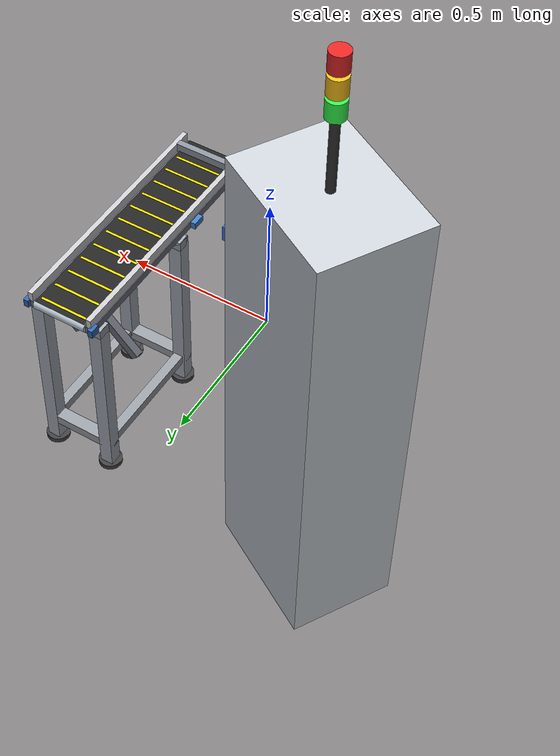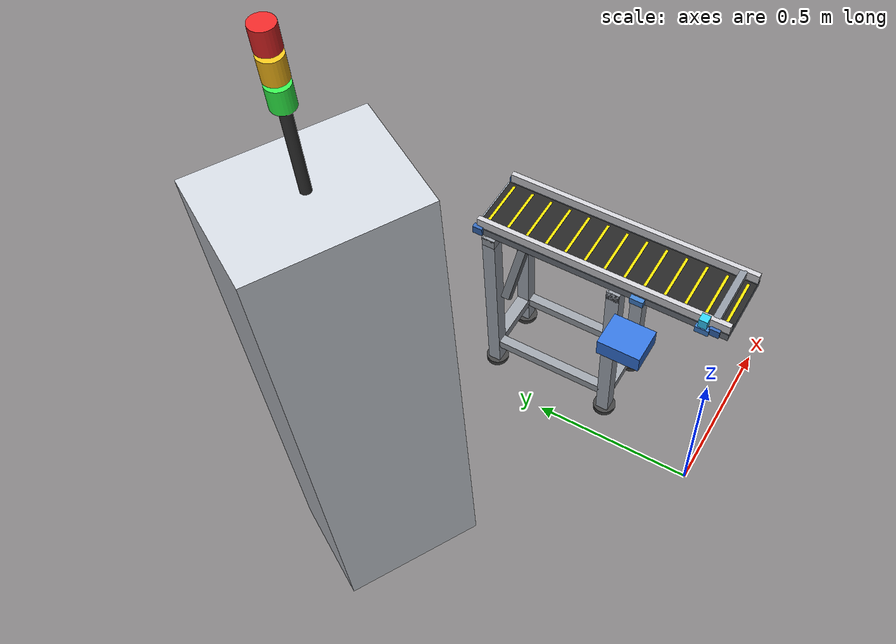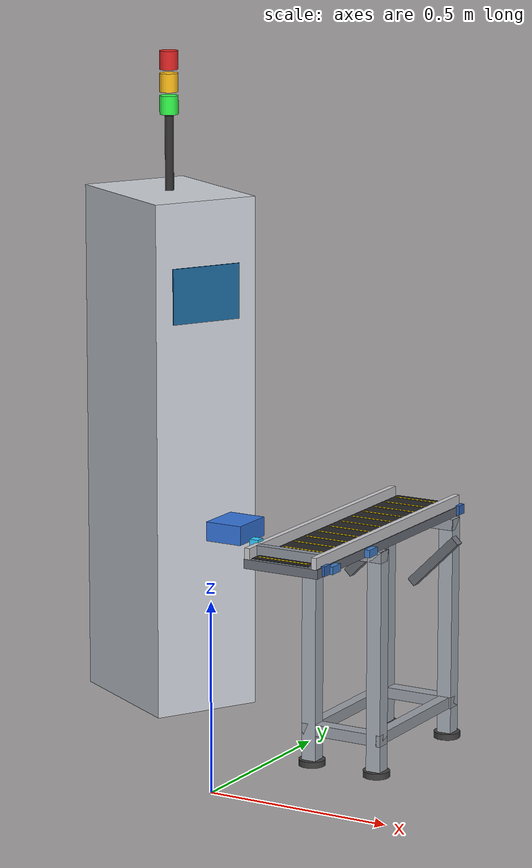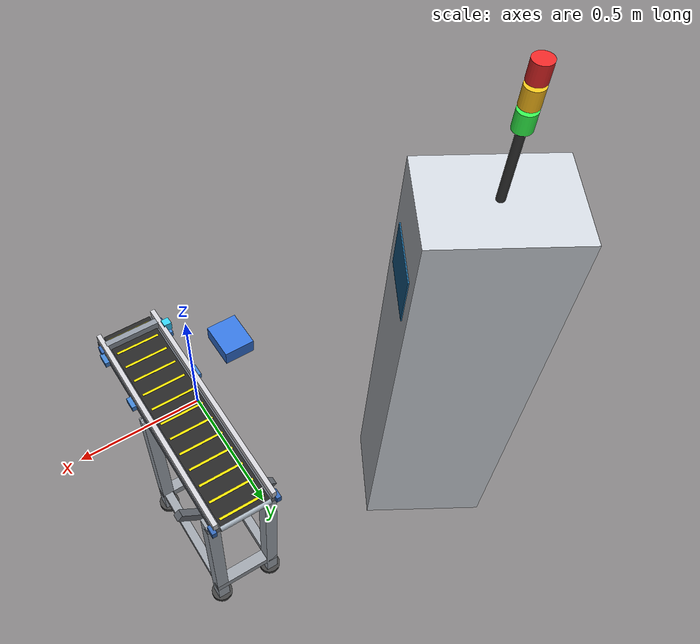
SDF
<sdf version="1.6">
 <world name="default">
  <model name="conveyor_system">
   <link name="conveyor_frame">
    <static>true</static>
    <visual name="bed_chassis_vis">
     <pose>0.20 0.38 0.612 0 0 0</pose>
     <geometry><box><size>0.210 0.760 0.024</size></box></geometry>
     <material>
      <ambient>0.32 0.34 0.36 1</ambient>
      <diffuse>0.42 0.44 0.48 1</diffuse>
      <specular>0.6 0.65 0.7 1</specular>
     </material>
    </visual>
    <collision name="slider_bed_collision">
     <pose>0.20 0.38 0.627 0 0 0</pose>
     <geometry><box><size>0.165 0.760 0.004</size></box></geometry>
     <surface>
      <friction>
       <ode><mu>0.05</mu><mu2>0.05</mu2></ode>
       <torsional><coefficient>5.0</coefficient><patch_radius>0.015</patch_radius></torsional>
      </friction>
      <contact>
       <ode><kp>500000.0</kp><kd>500.0</kd><max_vel>0.005</max_vel><min_depth>0.001</min_depth></ode>
      </contact>
      <bounce><restitution_coefficient>0.0</restitution_coefficient><threshold>1000000.0</threshold></bounce>
     </surface>
    </collision>
    <collision name="left_rail_col">
     <pose>0.105 0.38 0.638 0 0 0</pose>
     <geometry><box><size>0.015 0.760 0.030</size></box></geometry>
     <surface>
      <friction><ode><mu>0.05</mu><mu2>0.05</mu2></ode></friction>
      <contact>
       <ode><kp>1000000.0</kp><kd>100.0</kd><max_vel>0.005</max_vel><min_depth>0.001</min_depth></ode>
      </contact>
     </surface>
    </collision>
    <visual name="left_rail_vis">
     <pose>0.105 0.38 0.638 0 0 0</pose>
     <geometry><box><size>0.015 0.760 0.030</size></box></geometry>
     <material>
      <ambient>0.65 0.65 0.68 1</ambient>
      <diffuse>0.8 0.8 0.82 1</diffuse>
      <specular>0.8 0.8 0.8 1</specular>
     </material>
    </visual>
    <collision name="right_rail_col">
     <pose>0.295 0.38 0.638 0 0 0</pose>
     <geometry><box><size>0.015 0.760 0.030</size></box></geometry>
     <surface>
      <friction><ode><mu>0.05</mu><mu2>0.05</mu2></ode></friction>
      <contact>
       <ode><kp>1000000.0</kp><kd>100.0</kd><max_vel>0.005</max_vel><min_depth>0.001</min_depth></ode>
      </contact>
     </surface>
    </collision>
    <visual name="right_rail_vis">
     <pose>0.295 0.38 0.638 0 0 0</pose>
     <geometry><box><size>0.015 0.760 0.030</size></box></geometry>
     <material>
      <ambient>0.65 0.65 0.68 1</ambient>
      <diffuse>0.8 0.8 0.82 1</diffuse>
      <specular>0.8 0.8 0.8 1</specular>
     </material>
    </visual>
    <collision name="end_stop_col">
     <pose>0.20 0.045 0.638 0 0 0</pose>
     <geometry><box><size>0.180 0.020 0.030</size></box></geometry>
     <surface>
      <friction><ode><mu>0.05</mu><mu2>0.05</mu2></ode></friction>
      <contact>
       <ode><kp>500000.0</kp><kd>500.0</kd><max_vel>0.005</max_vel><min_depth>0.001</min_depth></ode>
      </contact>
      <bounce><restitution_coefficient>0.0</restitution_coefficient><threshold>1000000.0</threshold></bounce>
     </surface>
    </collision>
    <visual name="end_stop_vis">
     <pose>0.20 0.045 0.638 0 0 0</pose>
     <geometry><box><size>0.180 0.020 0.030</size></box></geometry>
     <material>
      <ambient>0.4 0.42 0.45 1</ambient>
      <diffuse>0.55 0.58 0.62 1</diffuse>
      <specular>0.7 0.75 0.8 1</specular>
     </material>
    </visual>
    <visual name="sensor_bracket">
     <pose>0.090 0.070 0.645 0 0 0</pose>
     <geometry><box><size>0.025 0.025 0.030</size></box></geometry>
     <material><ambient>0.1 0.7 0.9 1</ambient><diffuse>0.2 0.8 1.0 1</diffuse></material>
    </visual>
    <visual name="sensor_beam_lens">
     <pose>0.103 0.070 0.645 0 1.5708 0</pose>
     <geometry><cylinder><radius>0.004</radius><length>0.002</length></cylinder></geometry>
     <material><ambient>1 0 0 1</ambient><diffuse>1 0 0 1</diffuse><emissive>1 0 0 1</emissive></material>
    </visual>
    <visual name="clamp_f_l_vis">
     <pose>0.095 0.070 0.612 0 0 0</pose>
     <geometry><box><size>0.030 0.040 0.020</size></box></geometry>
     <material><ambient>0.2 0.4 0.7 1</ambient><diffuse>0.25 0.5 0.8 1</diffuse></material>
    </visual>
    <visual name="clamp_f_r_vis">
     <pose>0.305 0.070 0.612 0 0 0</pose>
     <geometry><box><size>0.030 0.040 0.020</size></box></geometry>
     <material><ambient>0.2 0.4 0.7 1</ambient><diffuse>0.25 0.5 0.8 1</diffuse></material>
    </visual>
    <visual name="clamp_m_l_vis">
     <pose>0.095 0.260 0.612 0 0 0</pose>
     <geometry><box><size>0.030 0.040 0.020</size></box></geometry>
     <material><ambient>0.2 0.4 0.7 1</ambient><diffuse>0.25 0.5 0.8 1</diffuse></material>
    </visual>
    <visual name="clamp_m_r_vis">
     <pose>0.305 0.260 0.612 0 0 0</pose>
     <geometry><box><size>0.030 0.040 0.020</size></box></geometry>
     <material><ambient>0.2 0.4 0.7 1</ambient><diffuse>0.25 0.5 0.8 1</diffuse></material>
    </visual>
    <visual name="stand1_leg_l_vis">
     <pose>0.105 0.330 0.300 0 0 0</pose>
     <geometry><box><size>0.040 0.040 0.600</size></box></geometry>
     <material><ambient>0.5 0.52 0.55 1</ambient><diffuse>0.65 0.68 0.72 1</diffuse></material>
    </visual>
    <visual name="stand1_leg_r_vis">
     <pose>0.295 0.330 0.300 0 0 0</pose>
     <geometry><box><size>0.040 0.040 0.600</size></box></geometry>
     <material><ambient>0.5 0.52 0.55 1</ambient><diffuse>0.65 0.68 0.72 1</diffuse></material>
    </visual>
    <visual name="stand1_upper_vis">
     <pose>0.200 0.330 0.585 0 0 0</pose>
     <geometry><box><size>0.230 0.040 0.030</size></box></geometry>
     <material><ambient>0.45 0.47 0.50 1</ambient><diffuse>0.6 0.62 0.65 1</diffuse></material>
    </visual>
    <visual name="stand1_lower_vis">
     <pose>0.200 0.330 0.100 0 0 0</pose>
     <geometry><box><size>0.230 0.040 0.030</size></box></geometry>
     <material><ambient>0.45 0.47 0.50 1</ambient><diffuse>0.6 0.62 0.65 1</diffuse></material>
    </visual>
    <visual name="stand1_foot_l">
     <pose>0.105 0.330 0.008 0 0 0</pose>
     <geometry><cylinder><radius>0.035</radius><length>0.016</length></cylinder></geometry>
     <material><ambient>0.2 0.2 0.2 1</ambient><diffuse>0.25 0.25 0.25 1</diffuse></material>
    </visual>
    <visual name="stand1_foot_r">
     <pose>0.295 0.330 0.008 0 0 0</pose>
     <geometry><cylinder><radius>0.035</radius><length>0.016</length></cylinder></geometry>
     <material><ambient>0.2 0.2 0.2 1</ambient><diffuse>0.25 0.25 0.25 1</diffuse></material>
    </visual>
    <visual name="stand2_leg_l_vis">
     <pose>0.105 0.720 0.300 0 0 0</pose>
     <geometry><box><size>0.040 0.040 0.600</size></box></geometry>
     <material><ambient>0.5 0.52 0.55 1</ambient><diffuse>0.65 0.68 0.72 1</diffuse></material>
    </visual>
    <visual name="stand2_leg_r_vis">
     <pose>0.295 0.720 0.300 0 0 0</pose>
     <geometry><box><size>0.040 0.040 0.600</size></box></geometry>
     <material><ambient>0.5 0.52 0.55 1</ambient><diffuse>0.65 0.68 0.72 1</diffuse></material>
    </visual>
    <visual name="stand2_upper_vis">
     <pose>0.200 0.720 0.585 0 0 0</pose>
     <geometry><box><size>0.230 0.040 0.030</size></box></geometry>
     <material><ambient>0.45 0.47 0.50 1</ambient><diffuse>0.6 0.62 0.65 1</diffuse></material>
    </visual>
    <visual name="stand2_lower_vis">
     <pose>0.200 0.720 0.100 0 0 0</pose>
     <geometry><box><size>0.230 0.040 0.030</size></box></geometry>
     <material><ambient>0.45 0.47 0.50 1</ambient><diffuse>0.6 0.62 0.65 1</diffuse></material>
    </visual>
    <visual name="stand2_foot_l">
     <pose>0.105 0.720 0.008 0 0 0</pose>
     <geometry><cylinder><radius>0.035</radius><length>0.016</length></cylinder></geometry>
     <material><ambient>0.2 0.2 0.2 1</ambient><diffuse>0.25 0.25 0.25 1</diffuse></material>
    </visual>
    <visual name="stand2_foot_r">
     <pose>0.295 0.720 0.008 0 0 0</pose>
     <geometry><cylinder><radius>0.035</radius><length>0.016</length></cylinder></geometry>
     <material><ambient>0.2 0.2 0.2 1</ambient><diffuse>0.25 0.25 0.25 1</diffuse></material>
    </visual>
    <visual name="gusset_l">
     <pose>0.105 0.640 0.500 0 0.785 0</pose>
     <geometry><box><size>0.025 0.025 0.180</size></box></geometry>
     <material><ambient>0.4 0.42 0.45 1</ambient></material>
    </visual>
    <visual name="gusset_r">
     <pose>0.295 0.640 0.500 0 0.785 0</pose>
     <geometry><box><size>0.025 0.025 0.180</size></box></geometry>
     <material><ambient>0.4 0.42 0.45 1</ambient></material>
    </visual>
    <visual name="stringer_l">
     <pose>0.105 0.525 0.100 0 0 0</pose>
     <geometry><box><size>0.030 0.390 0.030</size></box></geometry>
     <material><ambient>0.45 0.47 0.50 1</ambient><diffuse>0.6 0.62 0.65 1</diffuse></material>
    </visual>
    <visual name="stringer_r">
     <pose>0.295 0.525 0.100 0 0 0</pose>
     <geometry><box><size>0.030 0.390 0.030</size></box></geometry>
     <material><ambient>0.45 0.47 0.50 1</ambient><diffuse>0.6 0.62 0.65 1</diffuse></material>
    </visual>
    <visual name="bearing_head_l">
     <pose>0.095 0.038 0.615 0 0 0</pose>
     <geometry><box><size>0.015 0.030 0.025</size></box></geometry>
     <material><ambient>0.2 0.4 0.7 1</ambient></material>
    </visual>
    <visual name="bearing_head_r">
     <pose>0.305 0.038 0.615 0 0 0</pose>
     <geometry><box><size>0.015 0.030 0.025</size></box></geometry>
     <material><ambient>0.2 0.4 0.7 1</ambient></material>
    </visual>
    <visual name="bearing_tail_l">
     <pose>0.095 0.755 0.615 0 0 0</pose>
     <geometry><box><size>0.015 0.030 0.025</size></box></geometry>
     <material><ambient>0.2 0.4 0.7 1</ambient></material>
    </visual>
    <visual name="bearing_tail_r">
     <pose>0.305 0.755 0.615 0 0 0</pose>
     <geometry><box><size>0.015 0.030 0.025</size></box></geometry>
     <material><ambient>0.2 0.4 0.7 1</ambient></material>
    </visual>
   </link>
   <joint name="conveyor_world_anchor" type="fixed"><parent>world</parent><child>conveyor_frame</child></joint>
   <link name="head_roller">
    <pose>0.200 0.038 0.615 0 1.5708 0</pose>
    <inertial>
     <mass>0.5</mass>
     <inertia><ixx>0.001</ixx><ixy>0</ixy><ixz>0</ixz><iyy>0.001</iyy><iyz>0</iyz><izz>0.001</izz></inertia>
    </inertial>
    <visual name="head_roller_drum">
     <geometry><cylinder><radius>0.014</radius><length>0.165</length></cylinder></geometry>
     <material>
      <ambient>0.6 0.65 0.7 1</ambient>
      <diffuse>0.75 0.8 0.85 1</diffuse>
      <specular>0.9 0.9 0.9 1</specular>
     </material>
    </visual>
    <visual name="head_roller_stripe">
     <pose>0.013 0 0 0 0 0</pose>
     <geometry><box><size>0.003 0.003 0.165</size></box></geometry>
     <material><ambient>0.9 0.1 0.1 1</ambient><diffuse>1.0 0.1 0.1 1</diffuse></material>
    </visual>
   </link>
   <joint name="head_roller_joint" type="continuous">
    <parent>conveyor_frame</parent>
    <child>head_roller</child>
    <axis><xyz>1 0 0</xyz><dynamics><damping>0.01</damping></dynamics></axis>
   </joint>
   <link name="tail_roller">
    <pose>0.200 0.755 0.615 0 1.5708 0</pose>
    <inertial>
     <mass>0.5</mass>
     <inertia><ixx>0.001</ixx><ixy>0</ixy><ixz>0</ixz><iyy>0.001</iyy><iyz>0</iyz><izz>0.001</izz></inertia>
    </inertial>
    <visual name="tail_roller_drum">
     <geometry><cylinder><radius>0.014</radius><length>0.165</length></cylinder></geometry>
     <material>
      <ambient>0.6 0.65 0.7 1</ambient>
      <diffuse>0.75 0.8 0.85 1</diffuse>
      <specular>0.9 0.9 0.9 1</specular>
     </material>
    </visual>
    <visual name="tail_roller_stripe">
     <pose>0.013 0 0 0 0 0</pose>
     <geometry><box><size>0.003 0.003 0.165</size></box></geometry>
     <material><ambient>0.9 0.1 0.1 1</ambient><diffuse>1.0 0.1 0.1 1</diffuse></material>
    </visual>
   </link>
   <joint name="tail_roller_joint" type="continuous">
    <parent>conveyor_frame</parent>
    <child>tail_roller</child>
    <axis><xyz>1 0 0</xyz><dynamics><damping>0.01</damping></dynamics></axis>
   </joint>
   <link name="belt_visual_surface">
    <pose>0.20 0.380 0.6285 0 0 0</pose>
    <inertial>
     <mass>0.1</mass>
     <inertia><ixx>0.001</ixx><ixy>0</ixy><ixz>0</ixz><iyy>0.001</iyy><iyz>0</iyz><izz>0.001</izz></inertia>
    </inertial>
    <visual name="belt_backing">
     <geometry><box><size>0.162 0.760 0.001</size></box></geometry>
     <material>
      <ambient>0.10 0.10 0.10 1</ambient>
      <diffuse>0.14 0.14 0.14 1</diffuse>
      <specular>0.03 0.03 0.03 1</specular>
     </material>
    </visual>
    <visual name="slat_01">
     <pose>0 -0.360 0.0006 0 0 0</pose>
     <geometry><box><size>0.145 0.008 0.0002</size></box></geometry>
     <material><ambient>0.9 0.8 0.1 1</ambient><diffuse>1.0 0.85 0.0 1</diffuse></material>
    </visual>
    <visual name="slat_02">
     <pose>0 -0.300 0.0006 0 0 0</pose>
     <geometry><box><size>0.145 0.008 0.0002</size></box></geometry>
     <material><ambient>0.9 0.8 0.1 1</ambient><diffuse>1.0 0.85 0.0 1</diffuse></material>
    </visual>
    <visual name="slat_03">
     <pose>0 -0.240 0.0006 0 0 0</pose>
     <geometry><box><size>0.145 0.008 0.0002</size></box></geometry>
     <material><ambient>0.9 0.8 0.1 1</ambient><diffuse>1.0 0.85 0.0 1</diffuse></material>
    </visual>
    <visual name="slat_04">
     <pose>0 -0.180 0.0006 0 0 0</pose>
     <geometry><box><size>0.145 0.008 0.0002</size></box></geometry>
     <material><ambient>0.9 0.8 0.1 1</ambient><diffuse>1.0 0.85 0.0 1</diffuse></material>
    </visual>
    <visual name="slat_05">
     <pose>0 -0.120 0.0006 0 0 0</pose>
     <geometry><box><size>0.145 0.008 0.0002</size></box></geometry>
     <material><ambient>0.9 0.8 0.1 1</ambient><diffuse>1.0 0.85 0.0 1</diffuse></material>
    </visual>
    <visual name="slat_06">
     <pose>0 -0.060 0.0006 0 0 0</pose>
     <geometry><box><size>0.145 0.008 0.0002</size></box></geometry>
     <material><ambient>0.9 0.8 0.1 1</ambient><diffuse>1.0 0.85 0.0 1</diffuse></material>
    </visual>
    <visual name="slat_07">
     <pose>0  0.000 0.0006 0 0 0</pose>
     <geometry><box><size>0.145 0.008 0.0002</size></box></geometry>
     <material><ambient>0.9 0.8 0.1 1</ambient><diffuse>1.0 0.85 0.0 1</diffuse></material>
    </visual>
    <visual name="slat_08">
     <pose>0  0.060 0.0006 0 0 0</pose>
     <geometry><box><size>0.145 0.008 0.0002</size></box></geometry>
     <material><ambient>0.9 0.8 0.1 1</ambient><diffuse>1.0 0.85 0.0 1</diffuse></material>
    </visual>
    <visual name="slat_09">
     <pose>0  0.120 0.0006 0 0 0</pose>
     <geometry><box><size>0.145 0.008 0.0002</size></box></geometry>
     <material><ambient>0.9 0.8 0.1 1</ambient><diffuse>1.0 0.85 0.0 1</diffuse></material>
    </visual>
    <visual name="slat_10">
     <pose>0  0.180 0.0006 0 0 0</pose>
     <geometry><box><size>0.145 0.008 0.0002</size></box></geometry>
     <material><ambient>0.9 0.8 0.1 1</ambient><diffuse>1.0 0.85 0.0 1</diffuse></material>
    </visual>
    <visual name="slat_11">
     <pose>0  0.240 0.0006 0 0 0</pose>
     <geometry><box><size>0.145 0.008 0.0002</size></box></geometry>
     <material><ambient>0.9 0.8 0.1 1</ambient><diffuse>1.0 0.85 0.0 1</diffuse></material>
    </visual>
    <visual name="slat_12">
     <pose>0  0.300 0.0006 0 0 0</pose>
     <geometry><box><size>0.145 0.008 0.0002</size></box></geometry>
     <material><ambient>0.9 0.8 0.1 1</ambient><diffuse>1.0 0.85 0.0 1</diffuse></material>
    </visual>
    <visual name="slat_13">
     <pose>0  0.360 0.0006 0 0 0</pose>
     <geometry><box><size>0.145 0.008 0.0002</size></box></geometry>
     <material><ambient>0.9 0.8 0.1 1</ambient><diffuse>1.0 0.85 0.0 1</diffuse></material>
    </visual>
   </link>
   <joint name="belt_joint" type="prismatic">
    <parent>conveyor_frame</parent>
    <child>belt_visual_surface</child>
    <axis>
     <xyz>0 -1 0</xyz>
     <limit><lower>0.0</lower><upper>0.060</upper></limit>
     <dynamics><damping>0.1</damping></dynamics>
    </axis>
   </joint>
   <plugin name="aria_conveyor_plugin" filename="libaria_conveyor_plugin.so">
    <ros><namespace>/aria/conveyor</namespace></ros>
    <joint_name>belt_joint</joint_name>
    <max_velocity>0.25</max_velocity>
    <limit>0.060</limit>
    <publish_rate>25.0</publish_rate>
    <initial_power>0.0</initial_power>
   </plugin>
  </model>
  <model name="supply_bin">
   <static>true</static>
   <pose>-0.06 0.22 0.608 0 0 0</pose>
   <link name="link">
    <collision name="c">
     <pose>0 0 0.025 0 0 0</pose>
     <geometry><box><size>0.10 0.12 0.050</size></box></geometry>
    </collision>
    <visual name="v">
     <pose>0 0 0.025 0 0 0</pose>
     <geometry><box><size>0.10 0.12 0.050</size></box></geometry>
     <material><ambient>0.15 0.35 0.7 1</ambient><diffuse>0.2 0.45 0.85 1</diffuse></material>
    </visual>
   </link>
  </model>
  <model name="industrial_control_cabinet">
   <static>true</static>
   <pose>-0.55 0.70 0.0 0 0 -0.52</pose>
   <link name="cabinet_link">
    <collision name="cabinet_col">
     <pose>0 0 0.70 0 0 0</pose>
     <geometry><box><size>0.40 0.30 1.40</size></box></geometry>
    </collision>
    <visual name="cabinet_vis">
     <pose>0 0 0.70 0 0 0</pose>
     <geometry><box><size>0.40 0.30 1.40</size></box></geometry>
     <material><ambient>0.7 0.72 0.75 1</ambient><diffuse>0.8 0.82 0.85 1</diffuse></material>
    </visual>
    <visual name="hmi_screen">
     <pose>0.201 0 1.15 0 0 0</pose>
     <geometry><box><size>0.005 0.20 0.15</size></box></geometry>
     <material>
      <ambient>0.05 0.25 0.4 1</ambient>
      <diffuse>0.1 0.4 0.6 1</diffuse>
      <emissive>0.05 0.2 0.35 1</emissive>
     </material>
    </visual>
    <visual name="light_mast">
     <pose>0 0 1.50 0 0 0</pose>
     <geometry><cylinder><radius>0.012</radius><length>0.20</length></cylinder></geometry>
     <material><ambient>0.2 0.2 0.2 1</ambient></material>
    </visual>
    <visual name="stack_green">
     <pose>0 0 1.63 0 0 0</pose>
     <geometry><cylinder><radius>0.025</radius><length>0.05</length></cylinder></geometry>
     <material>
      <ambient>0.1 0.9 0.2 1</ambient>
      <diffuse>0.2 1.0 0.3 1</diffuse>
      <emissive>0.1 0.8 0.2 1</emissive>
     </material>
    </visual>
    <visual name="stack_amber">
     <pose>0 0 1.69 0 0 0</pose>
     <geometry><cylinder><radius>0.025</radius><length>0.05</length></cylinder></geometry>
     <material><ambient>0.8 0.6 0.1 1</ambient><diffuse>1.0 0.75 0.1 1</diffuse></material>
    </visual>
    <visual name="stack_red">
     <pose>0 0 1.75 0 0 0</pose>
     <geometry><cylinder><radius>0.025</radius><length>0.05</length></cylinder></geometry>
     <material><ambient>0.8 0.1 0.1 1</ambient><diffuse>0.9 0.15 0.15 1</diffuse></material>
    </visual>
   </link>
  </model>
 </world>
</sdf>
